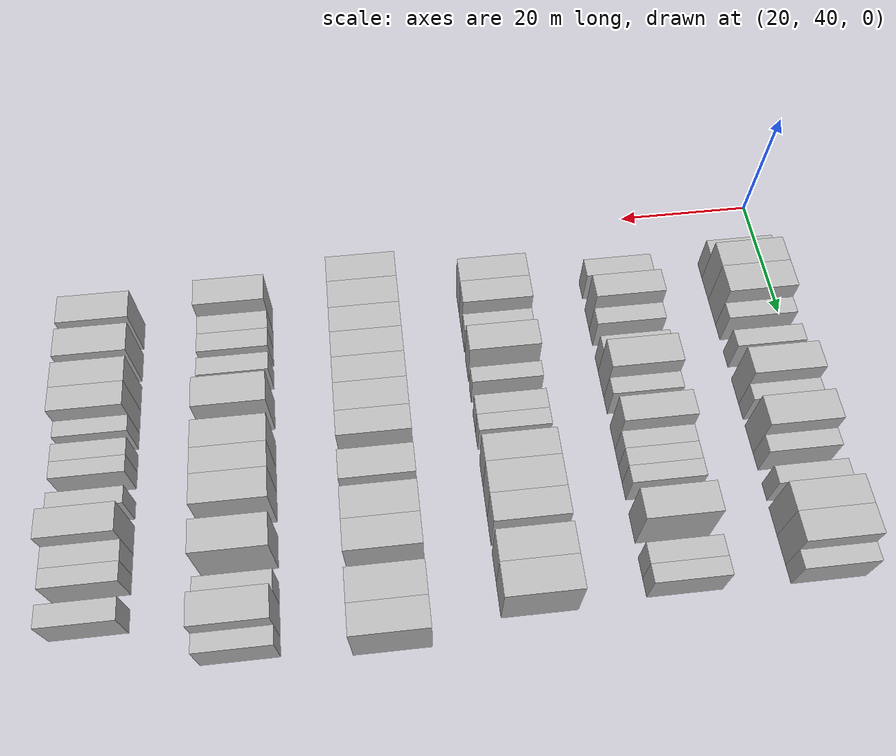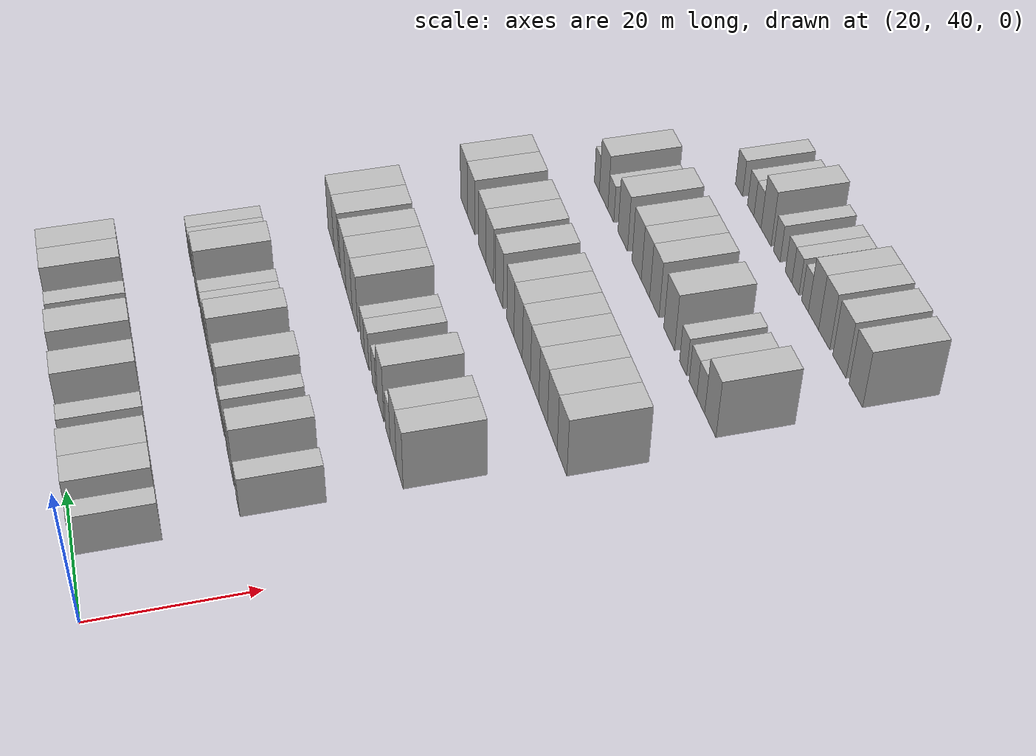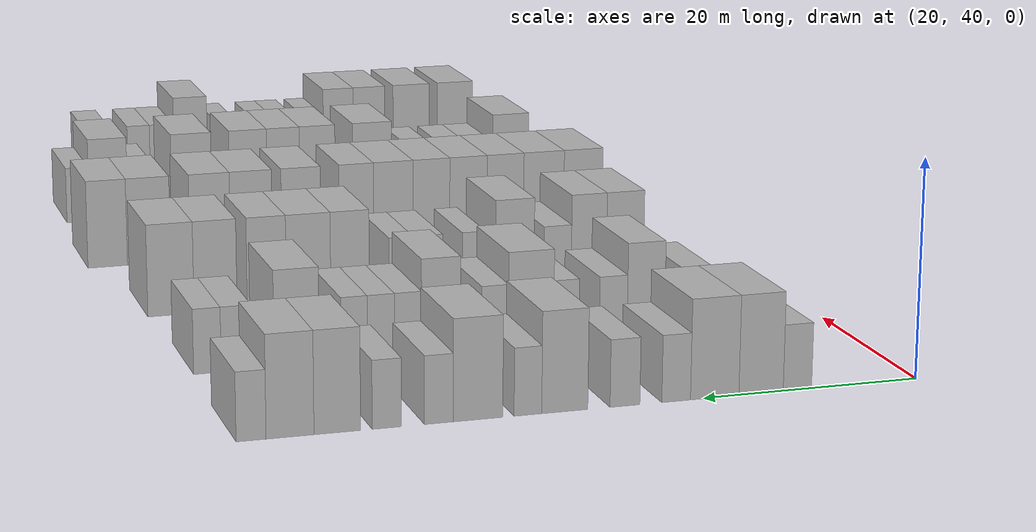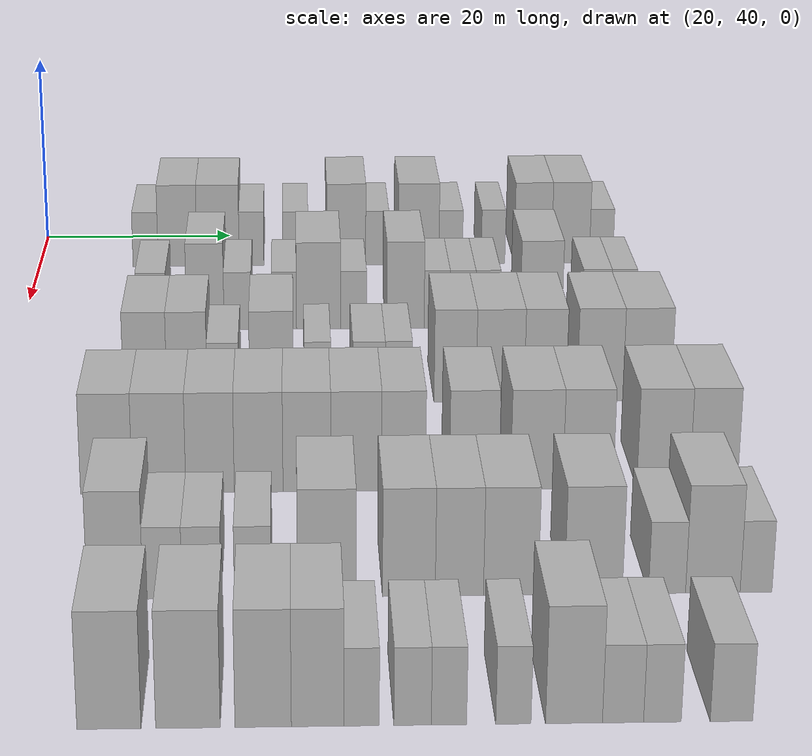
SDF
<sdf version="1.6">
 <world name="default">
  <model name="building_98">
   <static>1</static>
   <pose>25.0000 51.2853 0 0.000000 0.000000 0.000000</pose>
   <link name="link">
    <pose>0 0 3.00 0 0 0</pose>
    <collision name="collision"><geometry><box><size>10.0000 2.6683 6.0000</size></box></geometry></collision>
    <visual name="visual">
     <cast_shadows>0</cast_shadows>
     <geometry><box><size>10.0000 2.6683 6.0000</size></box></geometry>
     <material>
      <script>
       <uri>model://HANNAS_wall/materials/scripts</uri>
       <uri>model://HANNAS_wall/materials/textures</uri>
       <name>vrc/HANNAS_wall</name>
      </script>
     </material>
    </visual>
   </link>
  </model>
  <model name="building_99">
   <static>1</static>
   <pose>25.0000 54.6877 0 0.000000 0.000000 0.000000</pose>
   <link name="link">
    <pose>0 0 4.50 0 0 0</pose>
    <collision name="collision"><geometry><box><size>10.0000 4.1364 9.0000</size></box></geometry></collision>
    <visual name="visual">
     <cast_shadows>0</cast_shadows>
     <geometry><box><size>10.0000 4.1364 9.0000</size></box></geometry>
     <material>
      <script>
       <uri>model://HANNAS_wall/materials/scripts</uri>
       <uri>model://HANNAS_wall/materials/textures</uri>
       <name>vrc/HANNAS_wall</name>
      </script>
     </material>
    </visual>
   </link>
  </model>
  <model name="building_100">
   <static>1</static>
   <pose>25.0000 58.9940 0 0.000000 0.000000 0.000000</pose>
   <link name="link">
    <pose>0 0 4.50 0 0 0</pose>
    <collision name="collision"><geometry><box><size>10.0000 4.4761 9.0000</size></box></geometry></collision>
    <visual name="visual">
     <cast_shadows>0</cast_shadows>
     <geometry><box><size>10.0000 4.4761 9.0000</size></box></geometry>
     <material>
      <script>
       <uri>model://HANNAS_wall/materials/scripts</uri>
       <uri>model://HANNAS_wall/materials/textures</uri>
       <name>vrc/HANNAS_wall</name>
      </script>
     </material>
    </visual>
   </link>
  </model>
  <model name="building_101">
   <static>1</static>
   <pose>25.0000 62.5460 0 0.000000 0.000000 0.000000</pose>
   <link name="link">
    <pose>0 0 3.00 0 0 0</pose>
    <collision name="collision"><geometry><box><size>10.0000 2.6279 6.0000</size></box></geometry></collision>
    <visual name="visual">
     <cast_shadows>0</cast_shadows>
     <geometry><box><size>10.0000 2.6279 6.0000</size></box></geometry>
     <material>
      <script>
       <uri>model://HANNAS_wall/materials/scripts</uri>
       <uri>model://HANNAS_wall/materials/textures</uri>
       <name>vrc/HANNAS_wall</name>
      </script>
     </material>
    </visual>
   </link>
  </model>
  <model name="building_102">
   <static>1</static>
   <pose>25.0000 67.2147 0 0.000000 0.000000 0.000000</pose>
   <link name="link">
    <pose>0 0 3.00 0 0 0</pose>
    <collision name="collision"><geometry><box><size>10.0000 2.7096 6.0000</size></box></geometry></collision>
    <visual name="visual">
     <cast_shadows>0</cast_shadows>
     <geometry><box><size>10.0000 2.7096 6.0000</size></box></geometry>
     <material>
      <script>
       <uri>model://HANNAS_wall/materials/scripts</uri>
       <uri>model://HANNAS_wall/materials/textures</uri>
       <name>vrc/HANNAS_wall</name>
      </script>
     </material>
    </visual>
   </link>
  </model>
  <model name="building_103">
   <static>1</static>
   <pose>25.0000 72.6341 0 0.000000 0.000000 0.000000</pose>
   <link name="link">
    <pose>0 0 4.50 0 0 0</pose>
    <collision name="collision"><geometry><box><size>10.0000 4.1291 9.0000</size></box></geometry></collision>
    <visual name="visual">
     <cast_shadows>0</cast_shadows>
     <geometry><box><size>10.0000 4.1291 9.0000</size></box></geometry>
     <material>
      <script>
       <uri>model://HANNAS_wall/materials/scripts</uri>
       <uri>model://HANNAS_wall/materials/textures</uri>
       <name>vrc/HANNAS_wall</name>
      </script>
     </material>
    </visual>
   </link>
  </model>
  <model name="building_104">
   <static>1</static>
   <pose>25.0000 75.9276 0 0.000000 0.000000 0.000000</pose>
   <link name="link">
    <pose>0 0 3.00 0 0 0</pose>
    <collision name="collision"><geometry><box><size>10.0000 2.4578 6.0000</size></box></geometry></collision>
    <visual name="visual">
     <cast_shadows>0</cast_shadows>
     <geometry><box><size>10.0000 2.4578 6.0000</size></box></geometry>
     <material>
      <script>
       <uri>model://HANNAS_wall/materials/scripts</uri>
       <uri>model://HANNAS_wall/materials/textures</uri>
       <name>vrc/HANNAS_wall</name>
      </script>
     </material>
    </visual>
   </link>
  </model>
  <model name="building_105">
   <static>1</static>
   <pose>25.0000 80.3300 0 0.000000 0.000000 0.000000</pose>
   <link name="link">
    <pose>0 0 4.50 0 0 0</pose>
    <collision name="collision"><geometry><box><size>10.0000 4.3471 9.0000</size></box></geometry></collision>
    <visual name="visual">
     <cast_shadows>0</cast_shadows>
     <geometry><box><size>10.0000 4.3471 9.0000</size></box></geometry>
     <material>
      <script>
       <uri>model://HANNAS_wall/materials/scripts</uri>
       <uri>model://HANNAS_wall/materials/textures</uri>
       <name>vrc/HANNAS_wall</name>
      </script>
     </material>
    </visual>
   </link>
  </model>
  <model name="building_106">
   <static>1</static>
   <pose>25.0000 83.7656 0 0.000000 0.000000 0.000000</pose>
   <link name="link">
    <pose>0 0 3.00 0 0 0</pose>
    <collision name="collision"><geometry><box><size>10.0000 2.5241 6.0000</size></box></geometry></collision>
    <visual name="visual">
     <cast_shadows>0</cast_shadows>
     <geometry><box><size>10.0000 2.5241 6.0000</size></box></geometry>
     <material>
      <script>
       <uri>model://HANNAS_wall/materials/scripts</uri>
       <uri>model://HANNAS_wall/materials/textures</uri>
       <name>vrc/HANNAS_wall</name>
      </script>
     </material>
    </visual>
   </link>
  </model>
  <model name="building_107">
   <static>1</static>
   <pose>25.0000 88.2921 0 0.000000 0.000000 0.000000</pose>
   <link name="link">
    <pose>0 0 3.00 0 0 0</pose>
    <collision name="collision"><geometry><box><size>10.0000 2.5290 6.0000</size></box></geometry></collision>
    <visual name="visual">
     <cast_shadows>0</cast_shadows>
     <geometry><box><size>10.0000 2.5290 6.0000</size></box></geometry>
     <material>
      <script>
       <uri>model://HANNAS_wall/materials/scripts</uri>
       <uri>model://HANNAS_wall/materials/textures</uri>
       <name>vrc/HANNAS_wall</name>
      </script>
     </material>
    </visual>
   </link>
  </model>
  <model name="building_108">
   <static>1</static>
   <pose>25.0000 92.5470 0 0.000000 0.000000 0.000000</pose>
   <link name="link">
    <pose>0 0 4.50 0 0 0</pose>
    <collision name="collision"><geometry><box><size>10.0000 3.9807 9.0000</size></box></geometry></collision>
    <visual name="visual">
     <cast_shadows>0</cast_shadows>
     <geometry><box><size>10.0000 3.9807 9.0000</size></box></geometry>
     <material>
      <script>
       <uri>model://HANNAS_wall/materials/scripts</uri>
       <uri>model://HANNAS_wall/materials/textures</uri>
       <name>vrc/HANNAS_wall</name>
      </script>
     </material>
    </visual>
   </link>
  </model>
  <model name="building_109">
   <static>1</static>
   <pose>25.0000 96.5655 0 0.000000 0.000000 0.000000</pose>
   <link name="link">
    <pose>0 0 4.50 0 0 0</pose>
    <collision name="collision"><geometry><box><size>10.0000 4.0562 9.0000</size></box></geometry></collision>
    <visual name="visual">
     <cast_shadows>0</cast_shadows>
     <geometry><box><size>10.0000 4.0562 9.0000</size></box></geometry>
     <material>
      <script>
       <uri>model://HANNAS_wall/materials/scripts</uri>
       <uri>model://HANNAS_wall/materials/textures</uri>
       <name>vrc/HANNAS_wall</name>
      </script>
     </material>
    </visual>
   </link>
  </model>
  <model name="building_110">
   <static>1</static>
   <pose>25.0000 99.8547 0 0.000000 0.000000 0.000000</pose>
   <link name="link">
    <pose>0 0 3.00 0 0 0</pose>
    <collision name="collision"><geometry><box><size>10.0000 2.5223 6.0000</size></box></geometry></collision>
    <visual name="visual">
     <cast_shadows>0</cast_shadows>
     <geometry><box><size>10.0000 2.5223 6.0000</size></box></geometry>
     <material>
      <script>
       <uri>model://HANNAS_wall/materials/scripts</uri>
       <uri>model://HANNAS_wall/materials/textures</uri>
       <name>vrc/HANNAS_wall</name>
      </script>
     </material>
    </visual>
   </link>
  </model>
  <model name="building_269">
   <static>1</static>
   <pose>44.0000 52.9250 0 0.000000 0.000000 0.000000</pose>
   <link name="link">
    <pose>0 0 3.00 0 0 0</pose>
    <collision name="collision"><geometry><box><size>10.0000 2.9699 6.0000</size></box></geometry></collision>
    <visual name="visual">
     <cast_shadows>0</cast_shadows>
     <geometry><box><size>10.0000 2.9699 6.0000</size></box></geometry>
     <material>
      <script>
       <uri>model://HANNAS_wall/materials/scripts</uri>
       <uri>model://HANNAS_wall/materials/textures</uri>
       <name>vrc/HANNAS_wall</name>
      </script>
     </material>
    </visual>
   </link>
  </model>
  <model name="building_270">
   <static>1</static>
   <pose>44.0000 58.2547 0 0.000000 0.000000 0.000000</pose>
   <link name="link">
    <pose>0 0 4.50 0 0 0</pose>
    <collision name="collision"><geometry><box><size>10.0000 3.6895 9.0000</size></box></geometry></collision>
    <visual name="visual">
     <cast_shadows>0</cast_shadows>
     <geometry><box><size>10.0000 3.6895 9.0000</size></box></geometry>
     <material>
      <script>
       <uri>model://HANNAS_wall/materials/scripts</uri>
       <uri>model://HANNAS_wall/materials/textures</uri>
       <name>vrc/HANNAS_wall</name>
      </script>
     </material>
    </visual>
   </link>
  </model>
  <model name="building_271">
   <static>1</static>
   <pose>44.0000 61.4558 0 0.000000 0.000000 0.000000</pose>
   <link name="link">
    <pose>0 0 3.00 0 0 0</pose>
    <collision name="collision"><geometry><box><size>10.0000 2.7127 6.0000</size></box></geometry></collision>
    <visual name="visual">
     <cast_shadows>0</cast_shadows>
     <geometry><box><size>10.0000 2.7127 6.0000</size></box></geometry>
     <material>
      <script>
       <uri>model://HANNAS_wall/materials/scripts</uri>
       <uri>model://HANNAS_wall/materials/textures</uri>
       <name>vrc/HANNAS_wall</name>
      </script>
     </material>
    </visual>
   </link>
  </model>
  <model name="building_272">
   <static>1</static>
   <pose>44.0000 66.0344 0 0.000000 0.000000 0.000000</pose>
   <link name="link">
    <pose>0 0 3.00 0 0 0</pose>
    <collision name="collision"><geometry><box><size>10.0000 2.4447 6.0000</size></box></geometry></collision>
    <visual name="visual">
     <cast_shadows>0</cast_shadows>
     <geometry><box><size>10.0000 2.4447 6.0000</size></box></geometry>
     <material>
      <script>
       <uri>model://HANNAS_wall/materials/scripts</uri>
       <uri>model://HANNAS_wall/materials/textures</uri>
       <name>vrc/HANNAS_wall</name>
      </script>
     </material>
    </visual>
   </link>
  </model>
  <model name="building_273">
   <static>1</static>
   <pose>44.0000 69.4422 0 0.000000 0.000000 0.000000</pose>
   <link name="link">
    <pose>0 0 4.50 0 0 0</pose>
    <collision name="collision"><geometry><box><size>10.0000 4.3708 9.0000</size></box></geometry></collision>
    <visual name="visual">
     <cast_shadows>0</cast_shadows>
     <geometry><box><size>10.0000 4.3708 9.0000</size></box></geometry>
     <material>
      <script>
       <uri>model://HANNAS_wall/materials/scripts</uri>
       <uri>model://HANNAS_wall/materials/textures</uri>
       <name>vrc/HANNAS_wall</name>
      </script>
     </material>
    </visual>
   </link>
  </model>
  <model name="building_274">
   <static>1</static>
   <pose>44.0000 72.9072 0 0.000000 0.000000 0.000000</pose>
   <link name="link">
    <pose>0 0 3.00 0 0 0</pose>
    <collision name="collision"><geometry><box><size>10.0000 2.5592 6.0000</size></box></geometry></collision>
    <visual name="visual">
     <cast_shadows>0</cast_shadows>
     <geometry><box><size>10.0000 2.5592 6.0000</size></box></geometry>
     <material>
      <script>
       <uri>model://HANNAS_wall/materials/scripts</uri>
       <uri>model://HANNAS_wall/materials/textures</uri>
       <name>vrc/HANNAS_wall</name>
      </script>
     </material>
    </visual>
   </link>
  </model>
  <model name="building_275">
   <static>1</static>
   <pose>44.0000 78.0331 0 0.000000 0.000000 0.000000</pose>
   <link name="link">
    <pose>0 0 4.50 0 0 0</pose>
    <collision name="collision"><geometry><box><size>10.0000 3.6926 9.0000</size></box></geometry></collision>
    <visual name="visual">
     <cast_shadows>0</cast_shadows>
     <geometry><box><size>10.0000 3.6926 9.0000</size></box></geometry>
     <material>
      <script>
       <uri>model://HANNAS_wall/materials/scripts</uri>
       <uri>model://HANNAS_wall/materials/textures</uri>
       <name>vrc/HANNAS_wall</name>
      </script>
     </material>
    </visual>
   </link>
  </model>
  <model name="building_276">
   <static>1</static>
   <pose>44.0000 81.1507 0 0.000000 0.000000 0.000000</pose>
   <link name="link">
    <pose>0 0 3.00 0 0 0</pose>
    <collision name="collision"><geometry><box><size>10.0000 2.5426 6.0000</size></box></geometry></collision>
    <visual name="visual">
     <cast_shadows>0</cast_shadows>
     <geometry><box><size>10.0000 2.5426 6.0000</size></box></geometry>
     <material>
      <script>
       <uri>model://HANNAS_wall/materials/scripts</uri>
       <uri>model://HANNAS_wall/materials/textures</uri>
       <name>vrc/HANNAS_wall</name>
      </script>
     </material>
    </visual>
   </link>
  </model>
  <model name="building_277">
   <static>1</static>
   <pose>44.0000 83.6851 0 0.000000 0.000000 0.000000</pose>
   <link name="link">
    <pose>0 0 3.00 0 0 0</pose>
    <collision name="collision"><geometry><box><size>10.0000 2.5262 6.0000</size></box></geometry></collision>
    <visual name="visual">
     <cast_shadows>0</cast_shadows>
     <geometry><box><size>10.0000 2.5262 6.0000</size></box></geometry>
     <material>
      <script>
       <uri>model://HANNAS_wall/materials/scripts</uri>
       <uri>model://HANNAS_wall/materials/textures</uri>
       <name>vrc/HANNAS_wall</name>
      </script>
     </material>
    </visual>
   </link>
  </model>
  <model name="building_278">
   <static>1</static>
   <pose>44.0000 86.1770 0 0.000000 0.000000 0.000000</pose>
   <link name="link">
    <pose>0 0 3.00 0 0 0</pose>
    <collision name="collision"><geometry><box><size>10.0000 2.4576 6.0000</size></box></geometry></collision>
    <visual name="visual">
     <cast_shadows>0</cast_shadows>
     <geometry><box><size>10.0000 2.4576 6.0000</size></box></geometry>
     <material>
      <script>
       <uri>model://HANNAS_wall/materials/scripts</uri>
       <uri>model://HANNAS_wall/materials/textures</uri>
       <name>vrc/HANNAS_wall</name>
      </script>
     </material>
    </visual>
   </link>
  </model>
  <model name="building_279">
   <static>1</static>
   <pose>44.0000 91.4845 0 0.000000 0.000000 0.000000</pose>
   <link name="link">
    <pose>0 0 4.50 0 0 0</pose>
    <collision name="collision"><geometry><box><size>10.0000 4.1575 9.0000</size></box></geometry></collision>
    <visual name="visual">
     <cast_shadows>0</cast_shadows>
     <geometry><box><size>10.0000 4.1575 9.0000</size></box></geometry>
     <material>
      <script>
       <uri>model://HANNAS_wall/materials/scripts</uri>
       <uri>model://HANNAS_wall/materials/textures</uri>
       <name>vrc/HANNAS_wall</name>
      </script>
     </material>
    </visual>
   </link>
  </model>
  <model name="building_280">
   <static>1</static>
   <pose>44.0000 96.9701 0 0.000000 0.000000 0.000000</pose>
   <link name="link">
    <pose>0 0 3.00 0 0 0</pose>
    <collision name="collision"><geometry><box><size>10.0000 2.8137 6.0000</size></box></geometry></collision>
    <visual name="visual">
     <cast_shadows>0</cast_shadows>
     <geometry><box><size>10.0000 2.8137 6.0000</size></box></geometry>
     <material>
      <script>
       <uri>model://HANNAS_wall/materials/scripts</uri>
       <uri>model://HANNAS_wall/materials/textures</uri>
       <name>vrc/HANNAS_wall</name>
      </script>
     </material>
    </visual>
   </link>
  </model>
  <model name="building_281">
   <static>1</static>
   <pose>44.0000 99.6234 0 0.000000 0.000000 0.000000</pose>
   <link name="link">
    <pose>0 0 3.00 0 0 0</pose>
    <collision name="collision"><geometry><box><size>10.0000 2.4930 6.0000</size></box></geometry></collision>
    <visual name="visual">
     <cast_shadows>0</cast_shadows>
     <geometry><box><size>10.0000 2.4930 6.0000</size></box></geometry>
     <material>
      <script>
       <uri>model://HANNAS_wall/materials/scripts</uri>
       <uri>model://HANNAS_wall/materials/textures</uri>
       <name>vrc/HANNAS_wall</name>
      </script>
     </material>
    </visual>
   </link>
  </model>
  <model name="building_436">
   <static>1</static>
   <pose>63.0000 53.4027 0 0.000000 0.000000 0.000000</pose>
   <link name="link">
    <pose>0 0 4.50 0 0 0</pose>
    <collision name="collision"><geometry><box><size>10.0000 3.9383 9.0000</size></box></geometry></collision>
    <visual name="visual">
     <cast_shadows>0</cast_shadows>
     <geometry><box><size>10.0000 3.9383 9.0000</size></box></geometry>
     <material>
      <script>
       <uri>model://HANNAS_wall/materials/scripts</uri>
       <uri>model://HANNAS_wall/materials/textures</uri>
       <name>vrc/HANNAS_wall</name>
      </script>
     </material>
    </visual>
   </link>
  </model>
  <model name="building_437">
   <static>1</static>
   <pose>63.0000 57.2091 0 0.000000 0.000000 0.000000</pose>
   <link name="link">
    <pose>0 0 4.50 0 0 0</pose>
    <collision name="collision"><geometry><box><size>10.0000 3.6745 9.0000</size></box></geometry></collision>
    <visual name="visual">
     <cast_shadows>0</cast_shadows>
     <geometry><box><size>10.0000 3.6745 9.0000</size></box></geometry>
     <material>
      <script>
       <uri>model://HANNAS_wall/materials/scripts</uri>
       <uri>model://HANNAS_wall/materials/textures</uri>
       <name>vrc/HANNAS_wall</name>
      </script>
     </material>
    </visual>
   </link>
  </model>
  <model name="building_438">
   <static>1</static>
   <pose>63.0000 60.4818 0 0.000000 0.000000 0.000000</pose>
   <link name="link">
    <pose>0 0 3.00 0 0 0</pose>
    <collision name="collision"><geometry><box><size>10.0000 2.8708 6.0000</size></box></geometry></collision>
    <visual name="visual">
     <cast_shadows>0</cast_shadows>
     <geometry><box><size>10.0000 2.8708 6.0000</size></box></geometry>
     <material>
      <script>
       <uri>model://HANNAS_wall/materials/scripts</uri>
       <uri>model://HANNAS_wall/materials/textures</uri>
       <name>vrc/HANNAS_wall</name>
      </script>
     </material>
    </visual>
   </link>
  </model>
  <model name="building_439">
   <static>1</static>
   <pose>63.0000 64.9162 0 0.000000 0.000000 0.000000</pose>
   <link name="link">
    <pose>0 0 4.50 0 0 0</pose>
    <collision name="collision"><geometry><box><size>10.0000 3.9981 9.0000</size></box></geometry></collision>
    <visual name="visual">
     <cast_shadows>0</cast_shadows>
     <geometry><box><size>10.0000 3.9981 9.0000</size></box></geometry>
     <material>
      <script>
       <uri>model://HANNAS_wall/materials/scripts</uri>
       <uri>model://HANNAS_wall/materials/textures</uri>
       <name>vrc/HANNAS_wall</name>
      </script>
     </material>
    </visual>
   </link>
  </model>
  <model name="building_440">
   <static>1</static>
   <pose>63.0000 69.1161 0 0.000000 0.000000 0.000000</pose>
   <link name="link">
    <pose>0 0 3.00 0 0 0</pose>
    <collision name="collision"><geometry><box><size>10.0000 2.4016 6.0000</size></box></geometry></collision>
    <visual name="visual">
     <cast_shadows>0</cast_shadows>
     <geometry><box><size>10.0000 2.4016 6.0000</size></box></geometry>
     <material>
      <script>
       <uri>model://HANNAS_wall/materials/scripts</uri>
       <uri>model://HANNAS_wall/materials/textures</uri>
       <name>vrc/HANNAS_wall</name>
      </script>
     </material>
    </visual>
   </link>
  </model>
  <model name="building_441">
   <static>1</static>
   <pose>63.0000 73.7972 0 0.000000 0.000000 0.000000</pose>
   <link name="link">
    <pose>0 0 3.00 0 0 0</pose>
    <collision name="collision"><geometry><box><size>10.0000 2.9606 6.0000</size></box></geometry></collision>
    <visual name="visual">
     <cast_shadows>0</cast_shadows>
     <geometry><box><size>10.0000 2.9606 6.0000</size></box></geometry>
     <material>
      <script>
       <uri>model://HANNAS_wall/materials/scripts</uri>
       <uri>model://HANNAS_wall/materials/textures</uri>
       <name>vrc/HANNAS_wall</name>
      </script>
     </material>
    </visual>
   </link>
  </model>
  <model name="building_442">
   <static>1</static>
   <pose>63.0000 76.5111 0 0.000000 0.000000 0.000000</pose>
   <link name="link">
    <pose>0 0 3.00 0 0 0</pose>
    <collision name="collision"><geometry><box><size>10.0000 2.4673 6.0000</size></box></geometry></collision>
    <visual name="visual">
     <cast_shadows>0</cast_shadows>
     <geometry><box><size>10.0000 2.4673 6.0000</size></box></geometry>
     <material>
      <script>
       <uri>model://HANNAS_wall/materials/scripts</uri>
       <uri>model://HANNAS_wall/materials/textures</uri>
       <name>vrc/HANNAS_wall</name>
      </script>
     </material>
    </visual>
   </link>
  </model>
  <model name="building_443">
   <static>1</static>
   <pose>63.0000 81.6682 0 0.000000 0.000000 0.000000</pose>
   <link name="link">
    <pose>0 0 4.50 0 0 0</pose>
    <collision name="collision"><geometry><box><size>10.0000 3.8468 9.0000</size></box></geometry></collision>
    <visual name="visual">
     <cast_shadows>0</cast_shadows>
     <geometry><box><size>10.0000 3.8468 9.0000</size></box></geometry>
     <material>
      <script>
       <uri>model://HANNAS_wall/materials/scripts</uri>
       <uri>model://HANNAS_wall/materials/textures</uri>
       <name>vrc/HANNAS_wall</name>
      </script>
     </material>
    </visual>
   </link>
  </model>
  <model name="building_444">
   <static>1</static>
   <pose>63.0000 85.7960 0 0.000000 0.000000 0.000000</pose>
   <link name="link">
    <pose>0 0 4.50 0 0 0</pose>
    <collision name="collision"><geometry><box><size>10.0000 4.4087 9.0000</size></box></geometry></collision>
    <visual name="visual">
     <cast_shadows>0</cast_shadows>
     <geometry><box><size>10.0000 4.4087 9.0000</size></box></geometry>
     <material>
      <script>
       <uri>model://HANNAS_wall/materials/scripts</uri>
       <uri>model://HANNAS_wall/materials/textures</uri>
       <name>vrc/HANNAS_wall</name>
      </script>
     </material>
    </visual>
   </link>
  </model>
  <model name="building_445">
   <static>1</static>
   <pose>63.0000 89.9210 0 0.000000 0.000000 0.000000</pose>
   <link name="link">
    <pose>0 0 4.50 0 0 0</pose>
    <collision name="collision"><geometry><box><size>10.0000 3.8415 9.0000</size></box></geometry></collision>
    <visual name="visual">
     <cast_shadows>0</cast_shadows>
     <geometry><box><size>10.0000 3.8415 9.0000</size></box></geometry>
     <material>
      <script>
       <uri>model://HANNAS_wall/materials/scripts</uri>
       <uri>model://HANNAS_wall/materials/textures</uri>
       <name>vrc/HANNAS_wall</name>
      </script>
     </material>
    </visual>
   </link>
  </model>
  <model name="building_446">
   <static>1</static>
   <pose>63.0000 94.9408 0 0.000000 0.000000 0.000000</pose>
   <link name="link">
    <pose>0 0 4.50 0 0 0</pose>
    <collision name="collision"><geometry><box><size>10.0000 4.1980 9.0000</size></box></geometry></collision>
    <visual name="visual">
     <cast_shadows>0</cast_shadows>
     <geometry><box><size>10.0000 4.1980 9.0000</size></box></geometry>
     <material>
      <script>
       <uri>model://HANNAS_wall/materials/scripts</uri>
       <uri>model://HANNAS_wall/materials/textures</uri>
       <name>vrc/HANNAS_wall</name>
      </script>
     </material>
    </visual>
   </link>
  </model>
  <model name="building_447">
   <static>1</static>
   <pose>63.0000 99.2687 0 0.000000 0.000000 0.000000</pose>
   <link name="link">
    <pose>0 0 4.50 0 0 0</pose>
    <collision name="collision"><geometry><box><size>10.0000 4.4578 9.0000</size></box></geometry></collision>
    <visual name="visual">
     <cast_shadows>0</cast_shadows>
     <geometry><box><size>10.0000 4.4578 9.0000</size></box></geometry>
     <material>
      <script>
       <uri>model://HANNAS_wall/materials/scripts</uri>
       <uri>model://HANNAS_wall/materials/textures</uri>
       <name>vrc/HANNAS_wall</name>
      </script>
     </material>
    </visual>
   </link>
  </model>
  <model name="building_605">
   <static>1</static>
   <pose>82.0000 51.2245 0 0.000000 0.000000 0.000000</pose>
   <link name="link">
    <pose>0 0 4.50 0 0 0</pose>
    <collision name="collision"><geometry><box><size>10.0000 4.3162 9.0000</size></box></geometry></collision>
    <visual name="visual">
     <cast_shadows>0</cast_shadows>
     <geometry><box><size>10.0000 4.3162 9.0000</size></box></geometry>
     <material>
      <script>
       <uri>model://HANNAS_wall/materials/scripts</uri>
       <uri>model://HANNAS_wall/materials/textures</uri>
       <name>vrc/HANNAS_wall</name>
      </script>
     </material>
    </visual>
   </link>
  </model>
  <model name="building_606">
   <static>1</static>
   <pose>82.0000 55.6154 0 0.000000 0.000000 0.000000</pose>
   <link name="link">
    <pose>0 0 4.50 0 0 0</pose>
    <collision name="collision"><geometry><box><size>10.0000 4.4655 9.0000</size></box></geometry></collision>
    <visual name="visual">
     <cast_shadows>0</cast_shadows>
     <geometry><box><size>10.0000 4.4655 9.0000</size></box></geometry>
     <material>
      <script>
       <uri>model://HANNAS_wall/materials/scripts</uri>
       <uri>model://HANNAS_wall/materials/textures</uri>
       <name>vrc/HANNAS_wall</name>
      </script>
     </material>
    </visual>
   </link>
  </model>
  <model name="building_607">
   <static>1</static>
   <pose>82.0000 59.8749 0 0.000000 0.000000 0.000000</pose>
   <link name="link">
    <pose>0 0 4.50 0 0 0</pose>
    <collision name="collision"><geometry><box><size>10.0000 4.0535 9.0000</size></box></geometry></collision>
    <visual name="visual">
     <cast_shadows>0</cast_shadows>
     <geometry><box><size>10.0000 4.0535 9.0000</size></box></geometry>
     <material>
      <script>
       <uri>model://HANNAS_wall/materials/scripts</uri>
       <uri>model://HANNAS_wall/materials/textures</uri>
       <name>vrc/HANNAS_wall</name>
      </script>
     </material>
    </visual>
   </link>
  </model>
  <model name="building_608">
   <static>1</static>
   <pose>82.0000 63.9390 0 0.000000 0.000000 0.000000</pose>
   <link name="link">
    <pose>0 0 4.50 0 0 0</pose>
    <collision name="collision"><geometry><box><size>10.0000 4.0747 9.0000</size></box></geometry></collision>
    <visual name="visual">
     <cast_shadows>0</cast_shadows>
     <geometry><box><size>10.0000 4.0747 9.0000</size></box></geometry>
     <material>
      <script>
       <uri>model://HANNAS_wall/materials/scripts</uri>
       <uri>model://HANNAS_wall/materials/textures</uri>
       <name>vrc/HANNAS_wall</name>
      </script>
     </material>
    </visual>
   </link>
  </model>
  <model name="building_609">
   <static>1</static>
   <pose>82.0000 67.9789 0 0.000000 0.000000 0.000000</pose>
   <link name="link">
    <pose>0 0 4.50 0 0 0</pose>
    <collision name="collision"><geometry><box><size>10.0000 4.0052 9.0000</size></box></geometry></collision>
    <visual name="visual">
     <cast_shadows>0</cast_shadows>
     <geometry><box><size>10.0000 4.0052 9.0000</size></box></geometry>
     <material>
      <script>
       <uri>model://HANNAS_wall/materials/scripts</uri>
       <uri>model://HANNAS_wall/materials/textures</uri>
       <name>vrc/HANNAS_wall</name>
      </script>
     </material>
    </visual>
   </link>
  </model>
  <model name="building_610">
   <static>1</static>
   <pose>82.0000 72.1030 0 0.000000 0.000000 0.000000</pose>
   <link name="link">
    <pose>0 0 4.50 0 0 0</pose>
    <collision name="collision"><geometry><box><size>10.0000 4.2431 9.0000</size></box></geometry></collision>
    <visual name="visual">
     <cast_shadows>0</cast_shadows>
     <geometry><box><size>10.0000 4.2431 9.0000</size></box></geometry>
     <material>
      <script>
       <uri>model://HANNAS_wall/materials/scripts</uri>
       <uri>model://HANNAS_wall/materials/textures</uri>
       <name>vrc/HANNAS_wall</name>
      </script>
     </material>
    </visual>
   </link>
  </model>
  <model name="building_611">
   <static>1</static>
   <pose>82.0000 76.0630 0 0.000000 0.000000 0.000000</pose>
   <link name="link">
    <pose>0 0 4.50 0 0 0</pose>
    <collision name="collision"><geometry><box><size>10.0000 3.6768 9.0000</size></box></geometry></collision>
    <visual name="visual">
     <cast_shadows>0</cast_shadows>
     <geometry><box><size>10.0000 3.6768 9.0000</size></box></geometry>
     <material>
      <script>
       <uri>model://HANNAS_wall/materials/scripts</uri>
       <uri>model://HANNAS_wall/materials/textures</uri>
       <name>vrc/HANNAS_wall</name>
      </script>
     </material>
    </visual>
   </link>
  </model>
  <model name="building_612">
   <static>1</static>
   <pose>82.0000 81.9716 0 0.000000 0.000000 0.000000</pose>
   <link name="link">
    <pose>0 0 4.50 0 0 0</pose>
    <collision name="collision"><geometry><box><size>10.0000 4.1403 9.0000</size></box></geometry></collision>
    <visual name="visual">
     <cast_shadows>0</cast_shadows>
     <geometry><box><size>10.0000 4.1403 9.0000</size></box></geometry>
     <material>
      <script>
       <uri>model://HANNAS_wall/materials/scripts</uri>
       <uri>model://HANNAS_wall/materials/textures</uri>
       <name>vrc/HANNAS_wall</name>
      </script>
     </material>
    </visual>
   </link>
  </model>
  <model name="building_613">
   <static>1</static>
   <pose>82.0000 87.2431 0 0.000000 0.000000 0.000000</pose>
   <link name="link">
    <pose>0 0 4.50 0 0 0</pose>
    <collision name="collision"><geometry><box><size>10.0000 4.4029 9.0000</size></box></geometry></collision>
    <visual name="visual">
     <cast_shadows>0</cast_shadows>
     <geometry><box><size>10.0000 4.4029 9.0000</size></box></geometry>
     <material>
      <script>
       <uri>model://HANNAS_wall/materials/scripts</uri>
       <uri>model://HANNAS_wall/materials/textures</uri>
       <name>vrc/HANNAS_wall</name>
      </script>
     </material>
    </visual>
   </link>
  </model>
  <model name="building_614">
   <static>1</static>
   <pose>82.0000 91.5567 0 0.000000 0.000000 0.000000</pose>
   <link name="link">
    <pose>0 0 4.50 0 0 0</pose>
    <collision name="collision"><geometry><box><size>10.0000 4.2242 9.0000</size></box></geometry></collision>
    <visual name="visual">
     <cast_shadows>0</cast_shadows>
     <geometry><box><size>10.0000 4.2242 9.0000</size></box></geometry>
     <material>
      <script>
       <uri>model://HANNAS_wall/materials/scripts</uri>
       <uri>model://HANNAS_wall/materials/textures</uri>
       <name>vrc/HANNAS_wall</name>
      </script>
     </material>
    </visual>
   </link>
  </model>
  <model name="building_615">
   <static>1</static>
   <pose>82.0000 97.8939 0 0.000000 0.000000 0.000000</pose>
   <link name="link">
    <pose>0 0 4.50 0 0 0</pose>
    <collision name="collision"><geometry><box><size>10.0000 4.4502 9.0000</size></box></geometry></collision>
    <visual name="visual">
     <cast_shadows>0</cast_shadows>
     <geometry><box><size>10.0000 4.4502 9.0000</size></box></geometry>
     <material>
      <script>
       <uri>model://HANNAS_wall/materials/scripts</uri>
       <uri>model://HANNAS_wall/materials/textures</uri>
       <name>vrc/HANNAS_wall</name>
      </script>
     </material>
    </visual>
   </link>
  </model>
  <model name="building_616">
   <static>1</static>
   <pose>82.0000 102.1367 0 0.000000 0.000000 0.000000</pose>
   <link name="link">
    <pose>0 0 4.50 0 0 0</pose>
    <collision name="collision"><geometry><box><size>10.0000 4.0354 9.0000</size></box></geometry></collision>
    <visual name="visual">
     <cast_shadows>0</cast_shadows>
     <geometry><box><size>10.0000 4.0354 9.0000</size></box></geometry>
     <material>
      <script>
       <uri>model://HANNAS_wall/materials/scripts</uri>
       <uri>model://HANNAS_wall/materials/textures</uri>
       <name>vrc/HANNAS_wall</name>
      </script>
     </material>
    </visual>
   </link>
  </model>
  <model name="building_780">
   <static>1</static>
   <pose>101.0000 53.2469 0 0.000000 0.000000 0.000000</pose>
   <link name="link">
    <pose>0 0 4.50 0 0 0</pose>
    <collision name="collision"><geometry><box><size>10.0000 4.2190 9.0000</size></box></geometry></collision>
    <visual name="visual">
     <cast_shadows>0</cast_shadows>
     <geometry><box><size>10.0000 4.2190 9.0000</size></box></geometry>
     <material>
      <script>
       <uri>model://HANNAS_wall/materials/scripts</uri>
       <uri>model://HANNAS_wall/materials/textures</uri>
       <name>vrc/HANNAS_wall</name>
      </script>
     </material>
    </visual>
   </link>
  </model>
  <model name="building_781">
   <static>1</static>
   <pose>101.0000 56.8411 0 0.000000 0.000000 0.000000</pose>
   <link name="link">
    <pose>0 0 3.00 0 0 0</pose>
    <collision name="collision"><geometry><box><size>10.0000 2.9694 6.0000</size></box></geometry></collision>
    <visual name="visual">
     <cast_shadows>0</cast_shadows>
     <geometry><box><size>10.0000 2.9694 6.0000</size></box></geometry>
     <material>
      <script>
       <uri>model://HANNAS_wall/materials/scripts</uri>
       <uri>model://HANNAS_wall/materials/textures</uri>
       <name>vrc/HANNAS_wall</name>
      </script>
     </material>
    </visual>
   </link>
  </model>
  <model name="building_782">
   <static>1</static>
   <pose>101.0000 59.8146 0 0.000000 0.000000 0.000000</pose>
   <link name="link">
    <pose>0 0 3.00 0 0 0</pose>
    <collision name="collision"><geometry><box><size>10.0000 2.9776 6.0000</size></box></geometry></collision>
    <visual name="visual">
     <cast_shadows>0</cast_shadows>
     <geometry><box><size>10.0000 2.9776 6.0000</size></box></geometry>
     <material>
      <script>
       <uri>model://HANNAS_wall/materials/scripts</uri>
       <uri>model://HANNAS_wall/materials/textures</uri>
       <name>vrc/HANNAS_wall</name>
      </script>
     </material>
    </visual>
   </link>
  </model>
  <model name="building_783">
   <static>1</static>
   <pose>101.0000 63.7069 0 0.000000 0.000000 0.000000</pose>
   <link name="link">
    <pose>0 0 3.00 0 0 0</pose>
    <collision name="collision"><geometry><box><size>10.0000 2.8071 6.0000</size></box></geometry></collision>
    <visual name="visual">
     <cast_shadows>0</cast_shadows>
     <geometry><box><size>10.0000 2.8071 6.0000</size></box></geometry>
     <material>
      <script>
       <uri>model://HANNAS_wall/materials/scripts</uri>
       <uri>model://HANNAS_wall/materials/textures</uri>
       <name>vrc/HANNAS_wall</name>
      </script>
     </material>
    </visual>
   </link>
  </model>
  <model name="building_784">
   <static>1</static>
   <pose>101.0000 69.3396 0 0.000000 0.000000 0.000000</pose>
   <link name="link">
    <pose>0 0 4.50 0 0 0</pose>
    <collision name="collision"><geometry><box><size>10.0000 4.4584 9.0000</size></box></geometry></collision>
    <visual name="visual">
     <cast_shadows>0</cast_shadows>
     <geometry><box><size>10.0000 4.4584 9.0000</size></box></geometry>
     <material>
      <script>
       <uri>model://HANNAS_wall/materials/scripts</uri>
       <uri>model://HANNAS_wall/materials/textures</uri>
       <name>vrc/HANNAS_wall</name>
      </script>
     </material>
    </visual>
   </link>
  </model>
  <model name="building_785">
   <static>1</static>
   <pose>101.0000 75.5811 0 0.000000 0.000000 0.000000</pose>
   <link name="link">
    <pose>0 0 4.50 0 0 0</pose>
    <collision name="collision"><geometry><box><size>10.0000 4.0245 9.0000</size></box></geometry></collision>
    <visual name="visual">
     <cast_shadows>0</cast_shadows>
     <geometry><box><size>10.0000 4.0245 9.0000</size></box></geometry>
     <material>
      <script>
       <uri>model://HANNAS_wall/materials/scripts</uri>
       <uri>model://HANNAS_wall/materials/textures</uri>
       <name>vrc/HANNAS_wall</name>
      </script>
     </material>
    </visual>
   </link>
  </model>
  <model name="building_786">
   <static>1</static>
   <pose>101.0000 79.4330 0 0.000000 0.000000 0.000000</pose>
   <link name="link">
    <pose>0 0 4.50 0 0 0</pose>
    <collision name="collision"><geometry><box><size>10.0000 3.6794 9.0000</size></box></geometry></collision>
    <visual name="visual">
     <cast_shadows>0</cast_shadows>
     <geometry><box><size>10.0000 3.6794 9.0000</size></box></geometry>
     <material>
      <script>
       <uri>model://HANNAS_wall/materials/scripts</uri>
       <uri>model://HANNAS_wall/materials/textures</uri>
       <name>vrc/HANNAS_wall</name>
      </script>
     </material>
    </visual>
   </link>
  </model>
  <model name="building_787">
   <static>1</static>
   <pose>101.0000 83.3657 0 0.000000 0.000000 0.000000</pose>
   <link name="link">
    <pose>0 0 4.50 0 0 0</pose>
    <collision name="collision"><geometry><box><size>10.0000 4.1859 9.0000</size></box></geometry></collision>
    <visual name="visual">
     <cast_shadows>0</cast_shadows>
     <geometry><box><size>10.0000 4.1859 9.0000</size></box></geometry>
     <material>
      <script>
       <uri>model://HANNAS_wall/materials/scripts</uri>
       <uri>model://HANNAS_wall/materials/textures</uri>
       <name>vrc/HANNAS_wall</name>
      </script>
     </material>
    </visual>
   </link>
  </model>
  <model name="building_788">
   <static>1</static>
   <pose>101.0000 89.6748 0 0.000000 0.000000 0.000000</pose>
   <link name="link">
    <pose>0 0 4.50 0 0 0</pose>
    <collision name="collision"><geometry><box><size>10.0000 4.4323 9.0000</size></box></geometry></collision>
    <visual name="visual">
     <cast_shadows>0</cast_shadows>
     <geometry><box><size>10.0000 4.4323 9.0000</size></box></geometry>
     <material>
      <script>
       <uri>model://HANNAS_wall/materials/scripts</uri>
       <uri>model://HANNAS_wall/materials/textures</uri>
       <name>vrc/HANNAS_wall</name>
      </script>
     </material>
    </visual>
   </link>
  </model>
  <model name="building_789">
   <static>1</static>
   <pose>101.0000 95.3116 0 0.000000 0.000000 0.000000</pose>
   <link name="link">
    <pose>0 0 3.00 0 0 0</pose>
    <collision name="collision"><geometry><box><size>10.0000 2.8413 6.0000</size></box></geometry></collision>
    <visual name="visual">
     <cast_shadows>0</cast_shadows>
     <geometry><box><size>10.0000 2.8413 6.0000</size></box></geometry>
     <material>
      <script>
       <uri>model://HANNAS_wall/materials/scripts</uri>
       <uri>model://HANNAS_wall/materials/textures</uri>
       <name>vrc/HANNAS_wall</name>
      </script>
     </material>
    </visual>
   </link>
  </model>
  <model name="building_790">
   <static>1</static>
   <pose>101.0000 98.8250 0 0.000000 0.000000 0.000000</pose>
   <link name="link">
    <pose>0 0 4.50 0 0 0</pose>
    <collision name="collision"><geometry><box><size>10.0000 4.1856 9.0000</size></box></geometry></collision>
    <visual name="visual">
     <cast_shadows>0</cast_shadows>
     <geometry><box><size>10.0000 4.1856 9.0000</size></box></geometry>
     <material>
      <script>
       <uri>model://HANNAS_wall/materials/scripts</uri>
       <uri>model://HANNAS_wall/materials/textures</uri>
       <name>vrc/HANNAS_wall</name>
      </script>
     </material>
    </visual>
   </link>
  </model>
  <model name="building_791">
   <static>1</static>
   <pose>101.0000 102.1403 0 0.000000 0.000000 0.000000</pose>
   <link name="link">
    <pose>0 0 3.00 0 0 0</pose>
    <collision name="collision"><geometry><box><size>10.0000 2.4450 6.0000</size></box></geometry></collision>
    <visual name="visual">
     <cast_shadows>0</cast_shadows>
     <geometry><box><size>10.0000 2.4450 6.0000</size></box></geometry>
     <material>
      <script>
       <uri>model://HANNAS_wall/materials/scripts</uri>
       <uri>model://HANNAS_wall/materials/textures</uri>
       <name>vrc/HANNAS_wall</name>
      </script>
     </material>
    </visual>
   </link>
  </model>
  <model name="building_957">
   <static>1</static>
   <pose>120.0000 54.1304 0 0.000000 0.000000 0.000000</pose>
   <link name="link">
    <pose>0 0 4.50 0 0 0</pose>
    <collision name="collision"><geometry><box><size>10.0000 4.3794 9.0000</size></box></geometry></collision>
    <visual name="visual">
     <cast_shadows>0</cast_shadows>
     <geometry><box><size>10.0000 4.3794 9.0000</size></box></geometry>
     <material>
      <script>
       <uri>model://HANNAS_wall/materials/scripts</uri>
       <uri>model://HANNAS_wall/materials/textures</uri>
       <name>vrc/HANNAS_wall</name>
      </script>
     </material>
    </visual>
   </link>
  </model>
  <model name="building_958">
   <static>1</static>
   <pose>120.0000 59.5272 0 0.000000 0.000000 0.000000</pose>
   <link name="link">
    <pose>0 0 4.50 0 0 0</pose>
    <collision name="collision"><geometry><box><size>10.0000 4.4142 9.0000</size></box></geometry></collision>
    <visual name="visual">
     <cast_shadows>0</cast_shadows>
     <geometry><box><size>10.0000 4.4142 9.0000</size></box></geometry>
     <material>
      <script>
       <uri>model://HANNAS_wall/materials/scripts</uri>
       <uri>model://HANNAS_wall/materials/textures</uri>
       <name>vrc/HANNAS_wall</name>
      </script>
     </material>
    </visual>
   </link>
  </model>
  <model name="building_959">
   <static>1</static>
   <pose>120.0000 64.6659 0 0.000000 0.000000 0.000000</pose>
   <link name="link">
    <pose>0 0 4.50 0 0 0</pose>
    <collision name="collision"><geometry><box><size>10.0000 3.8632 9.0000</size></box></geometry></collision>
    <visual name="visual">
     <cast_shadows>0</cast_shadows>
     <geometry><box><size>10.0000 3.8632 9.0000</size></box></geometry>
     <material>
      <script>
       <uri>model://HANNAS_wall/materials/scripts</uri>
       <uri>model://HANNAS_wall/materials/textures</uri>
       <name>vrc/HANNAS_wall</name>
      </script>
     </material>
    </visual>
   </link>
  </model>
  <model name="building_960">
   <static>1</static>
   <pose>120.0000 68.4031 0 0.000000 0.000000 0.000000</pose>
   <link name="link">
    <pose>0 0 4.50 0 0 0</pose>
    <collision name="collision"><geometry><box><size>10.0000 3.6110 9.0000</size></box></geometry></collision>
    <visual name="visual">
     <cast_shadows>0</cast_shadows>
     <geometry><box><size>10.0000 3.6110 9.0000</size></box></geometry>
     <material>
      <script>
       <uri>model://HANNAS_wall/materials/scripts</uri>
       <uri>model://HANNAS_wall/materials/textures</uri>
       <name>vrc/HANNAS_wall</name>
      </script>
     </material>
    </visual>
   </link>
  </model>
  <model name="building_961">
   <static>1</static>
   <pose>120.0000 71.4151 0 0.000000 0.000000 0.000000</pose>
   <link name="link">
    <pose>0 0 3.00 0 0 0</pose>
    <collision name="collision"><geometry><box><size>10.0000 2.4130 6.0000</size></box></geometry></collision>
    <visual name="visual">
     <cast_shadows>0</cast_shadows>
     <geometry><box><size>10.0000 2.4130 6.0000</size></box></geometry>
     <material>
      <script>
       <uri>model://HANNAS_wall/materials/scripts</uri>
       <uri>model://HANNAS_wall/materials/textures</uri>
       <name>vrc/HANNAS_wall</name>
      </script>
     </material>
    </visual>
   </link>
  </model>
  <model name="building_962">
   <static>1</static>
   <pose>120.0000 74.9066 0 0.000000 0.000000 0.000000</pose>
   <link name="link">
    <pose>0 0 3.00 0 0 0</pose>
    <collision name="collision"><geometry><box><size>10.0000 2.5700 6.0000</size></box></geometry></collision>
    <visual name="visual">
     <cast_shadows>0</cast_shadows>
     <geometry><box><size>10.0000 2.5700 6.0000</size></box></geometry>
     <material>
      <script>
       <uri>model://HANNAS_wall/materials/scripts</uri>
       <uri>model://HANNAS_wall/materials/textures</uri>
       <name>vrc/HANNAS_wall</name>
      </script>
     </material>
    </visual>
   </link>
  </model>
  <model name="building_963">
   <static>1</static>
   <pose>120.0000 77.4048 0 0.000000 0.000000 0.000000</pose>
   <link name="link">
    <pose>0 0 3.00 0 0 0</pose>
    <collision name="collision"><geometry><box><size>10.0000 2.4264 6.0000</size></box></geometry></collision>
    <visual name="visual">
     <cast_shadows>0</cast_shadows>
     <geometry><box><size>10.0000 2.4264 6.0000</size></box></geometry>
     <material>
      <script>
       <uri>model://HANNAS_wall/materials/scripts</uri>
       <uri>model://HANNAS_wall/materials/textures</uri>
       <name>vrc/HANNAS_wall</name>
      </script>
     </material>
    </visual>
   </link>
  </model>
  <model name="building_964">
   <static>1</static>
   <pose>120.0000 81.8302 0 0.000000 0.000000 0.000000</pose>
   <link name="link">
    <pose>0 0 3.00 0 0 0</pose>
    <collision name="collision"><geometry><box><size>10.0000 2.4244 6.0000</size></box></geometry></collision>
    <visual name="visual">
     <cast_shadows>0</cast_shadows>
     <geometry><box><size>10.0000 2.4244 6.0000</size></box></geometry>
     <material>
      <script>
       <uri>model://HANNAS_wall/materials/scripts</uri>
       <uri>model://HANNAS_wall/materials/textures</uri>
       <name>vrc/HANNAS_wall</name>
      </script>
     </material>
    </visual>
   </link>
  </model>
  <model name="building_965">
   <static>1</static>
   <pose>120.0000 85.9989 0 0.000000 0.000000 0.000000</pose>
   <link name="link">
    <pose>0 0 4.50 0 0 0</pose>
    <collision name="collision"><geometry><box><size>10.0000 3.9130 9.0000</size></box></geometry></collision>
    <visual name="visual">
     <cast_shadows>0</cast_shadows>
     <geometry><box><size>10.0000 3.9130 9.0000</size></box></geometry>
     <material>
      <script>
       <uri>model://HANNAS_wall/materials/scripts</uri>
       <uri>model://HANNAS_wall/materials/textures</uri>
       <name>vrc/HANNAS_wall</name>
      </script>
     </material>
    </visual>
   </link>
  </model>
  <model name="building_966">
   <static>1</static>
   <pose>120.0000 89.3735 0 0.000000 0.000000 0.000000</pose>
   <link name="link">
    <pose>0 0 3.00 0 0 0</pose>
    <collision name="collision"><geometry><box><size>10.0000 2.8363 6.0000</size></box></geometry></collision>
    <visual name="visual">
     <cast_shadows>0</cast_shadows>
     <geometry><box><size>10.0000 2.8363 6.0000</size></box></geometry>
     <material>
      <script>
       <uri>model://HANNAS_wall/materials/scripts</uri>
       <uri>model://HANNAS_wall/materials/textures</uri>
       <name>vrc/HANNAS_wall</name>
      </script>
     </material>
    </visual>
   </link>
  </model>
  <model name="building_967">
   <static>1</static>
   <pose>120.0000 92.0912 0 0.000000 0.000000 0.000000</pose>
   <link name="link">
    <pose>0 0 3.00 0 0 0</pose>
    <collision name="collision"><geometry><box><size>10.0000 2.5991 6.0000</size></box></geometry></collision>
    <visual name="visual">
     <cast_shadows>0</cast_shadows>
     <geometry><box><size>10.0000 2.5991 6.0000</size></box></geometry>
     <material>
      <script>
       <uri>model://HANNAS_wall/materials/scripts</uri>
       <uri>model://HANNAS_wall/materials/textures</uri>
       <name>vrc/HANNAS_wall</name>
      </script>
     </material>
    </visual>
   </link>
  </model>
  <model name="building_968">
   <static>1</static>
   <pose>120.0000 96.8590 0 0.000000 0.000000 0.000000</pose>
   <link name="link">
    <pose>0 0 3.00 0 0 0</pose>
    <collision name="collision"><geometry><box><size>10.0000 2.9366 6.0000</size></box></geometry></collision>
    <visual name="visual">
     <cast_shadows>0</cast_shadows>
     <geometry><box><size>10.0000 2.9366 6.0000</size></box></geometry>
     <material>
      <script>
       <uri>model://HANNAS_wall/materials/scripts</uri>
       <uri>model://HANNAS_wall/materials/textures</uri>
       <name>vrc/HANNAS_wall</name>
      </script>
     </material>
    </visual>
   </link>
  </model>
 </world>
</sdf>
